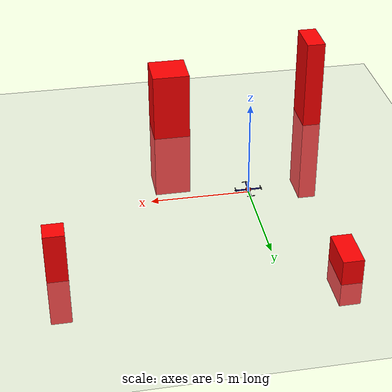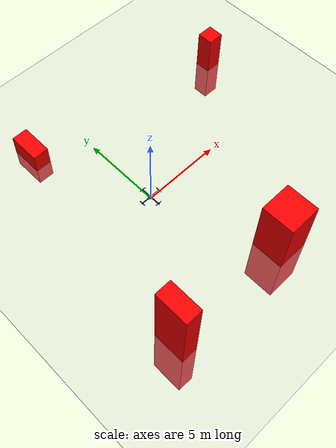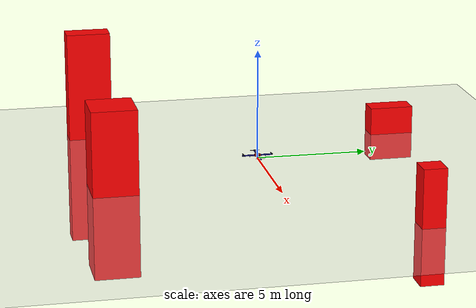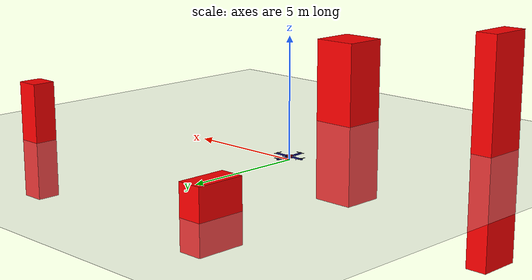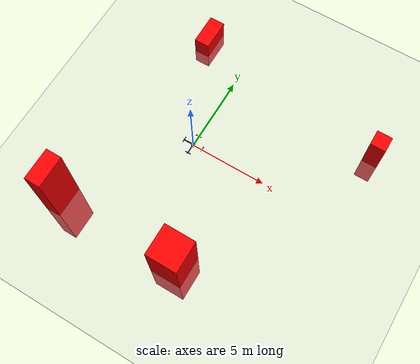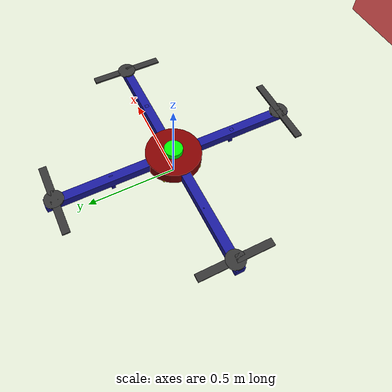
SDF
<?xml version="1.0" ?>
<sdf version="1.4">
  <world name="quadcopter_world">
    <!-- A ground plane -->
    <include>
      <uri>model://ground_plane</uri>
    </include>

    <!-- A light source -->
    <include>
      <uri>model://sun</uri>
    </include>

    <!-- Quadcopter model -->
    <model name="quadcopter">
      <pose>0 0 0 0 0 0</pose>

      <!-- Center Cylinder -->
      <link name="center_cylinder">
        <pose>0 0 0.15 0 0 0</pose>
        <collision name="collision">
          <geometry>
            <cylinder>
              <radius>0.15</radius>
              <length>0.07</length>
            </cylinder>
          </geometry>
        </collision>
        <visual name="visual">
          <geometry>
            <cylinder>
              <radius>0.15</radius>
              <length>0.07</length>
            </cylinder>
          </geometry>
          <material>
            <ambient>0.5 0 0 1</ambient>
            <diffuse>0.5 0 0 1</diffuse>
            <specular>0.5 0 0 1</specular>
            <emissive>0.5 0 0 1</emissive>
          </material>
        </visual>
      </link>

      <!-- Arm 1 -->
      <link name="arm_1">
        <pose>0.35 0 0.15 0 0 0</pose>
        <collision name="collision">
          <geometry>
            <box>
              <size>0.7 0.05 0.05</size>
            </box>
          </geometry>
        </collision>
        <visual name="visual">
          <geometry>
            <box>
              <size>0.7 0.05 0.05</size>
            </box>
          </geometry>
          <material>
            <ambient>0.1 0.1 0.6 1</ambient>
            <diffuse>0.1 0.1 0.6 1</diffuse>
            <specular>0.1 0.1 0.6 1</specular>
            <emissive>0.1 0.1 0.6 1</emissive>
          </material>
        </visual>
        <collision name="base1_collision">
          <geometry>
            <box>
              <size>0.02 0.02 0.1</size>
            </box>
          </geometry>
        </collision>
        <visual name="base_visual">
          <geometry>
            <box>
              <size>0.02 0.02 0.1</size>
            </box>
          </geometry>
          <material>
            <ambient>0.1 0.1 0.6 1</ambient>
            <diffuse>0.1 0.1 0.6 1</diffuse>
            <specular>0.1 0.1 0.6 1</specular>
            <emissive>0.1 0.1 0.6 1</emissive>
          </material>
          <pose>0 0 -0.025 0 0 0</pose>
        </visual>
      </link>

      <!-- Arm 2 -->
      <link name="arm_2">
        <pose>0 0.35 0.15 0 0 1.5708</pose>
        <collision name="collision">
          <geometry>
            <box>
              <size>0.7 0.05 0.05</size>
            </box>
          </geometry>
        </collision>
        <visual name="visual">
          <geometry>
            <box>
              <size>0.7 0.05 0.05</size>
            </box>
          </geometry>
          <material>
            <ambient>0.1 0.1 0.6 1</ambient>
            <diffuse>0.1 0.1 0.6 1</diffuse>
            <specular>0.1 0.1 0.6 1</specular>
            <emissive>0.1 0.1 0.6 1</emissive>
          </material>
        </visual>
        <collision name="base2_collision">
          <geometry>
            <box>
              <size>0.02 0.02 0.1</size>
            </box>
          </geometry>
        </collision>
        <visual name="base_visual">
          <geometry>
            <box>
              <size>0.02 0.02 0.1</size>
            </box>
          </geometry>
          <material>
            <ambient>0.1 0.1 0.6 1</ambient>
            <diffuse>0.1 0.1 0.6 1</diffuse>
            <specular>0.1 0.1 0.6 1</specular>
            <emissive>0.1 0.1 0.6 1</emissive>
          </material>
          <pose>0 0 -0.025 0 0 0</pose>
        </visual>
      </link>

      <!-- Arm 3 -->
      <link name="arm_3">
        <pose>-0.35 0 0.15 0 0 0</pose>
        <collision name="collision">
          <geometry>
            <box>
              <size>0.7 0.05 0.05</size>
            </box>
          </geometry>
        </collision>
        <visual name="visual">
          <geometry>
            <box>
              <size>0.7 0.05 0.05</size>
            </box>
          </geometry>
          <material>
            <ambient>0.1 0.1 0.6 1</ambient>
            <diffuse>0.1 0.1 0.6 1</diffuse>
            <specular>0.1 0.1 0.6 1</specular>
            <emissive>0.1 0.1 0.6 1</emissive>
          </material>
        </visual>
        <collision name="base3_collision">
          <geometry>
            <box>
              <size>0.02 0.02 0.1</size>
            </box>
          </geometry>
        </collision>
        <visual name="base_visual">
          <geometry>
            <box>
              <size>0.02 0.02 0.1</size>
            </box>
          </geometry>
          <material>
            <ambient>0.1 0.1 0.6 1</ambient>
            <diffuse>0.1 0.1 0.6 1</diffuse>
            <specular>0.1 0.1 0.6 1</specular>
            <emissive>0.1 0.1 0.6 1</emissive>
          </material>
          <pose>0 0 -0.025 0 0 0</pose>
        </visual>
      </link>

      <!-- Arm 4 -->
      <link name="arm_4">
        <pose>0 -0.35 0.15 0 0 1.5708</pose>
        <collision name="collision">
          <geometry>
            <box>
              <size>0.7 0.05 0.05</size>
            </box>
          </geometry>
        </collision>
        <visual name="visual">
          <geometry>
            <box>
              <size>0.7 0.05 0.05</size>
            </box>
          </geometry>
          <material>
            <ambient>0.1 0.1 0.6 1</ambient>
            <diffuse>0.1 0.1 0.6 1</diffuse>
            <specular>0.1 0.1 0.6 1</specular>
            <emissive>0.1 0.1 0.6 1</emissive>
          </material>
        </visual>
        <collision name="base4_collision">
          <geometry>
            <box>
              <size>0.02 0.02 0.1</size>
            </box>
          </geometry>
        </collision>
        <visual name="base_visual">
          <geometry>
            <box>
              <size>0.02 0.02 0.1</size>
            </box>
          </geometry>
          <material>
            <ambient>0.1 0.1 0.6 1</ambient>
            <diffuse>0.1 0.1 0.6 1</diffuse>
            <specular>0.1 0.1 0.6 1</specular>
            <emissive>0.1 0.1 0.6 1</emissive>
          </material>
          <pose>0 0 -0.025 0 0 0</pose>
        </visual>
      </link>

      <!-- Rotor 1 -->
      <link name="rotor_1">
        <pose>0.65 0 0.18 0 0 0</pose>
        <collision name="collision">
          <geometry>
            <cylinder>
              <radius>0.05</radius>
              <length>0.01</length>
            </cylinder>
          </geometry>
        </collision>
        <visual name="visual">
          <geometry>
            <cylinder>
              <radius>0.05</radius>
              <length>0.01</length>
            </cylinder>
          </geometry>
          <material>
            <ambient>0.2 0.2 0.2 1</ambient>
            <diffuse>0.2 0.2 0.2 1</diffuse>
            <specular>0.2 0.2 0.2 1</specular>
            <emissive>0.2 0.2 0.2 1</emissive>
          </material>
        </visual>

        <!-- Propeller blades -->
        <collision name="blade_1_collision">
          <geometry>
            <box>
              <size>0.2 0.04 0.01</size>
            </box>
          </geometry>
          <pose>0 0.1 0 0 0 1.5708</pose>
        </collision>
        <visual name="blade_1_visual">
          <geometry>
            <box>
              <size>0.2 0.04 0.01</size>
            </box>
          </geometry>
          <material>
            <ambient>0.2 0.2 0.2 1</ambient>
            <diffuse>0.2 0.2 0.2 1</diffuse>
            <specular>0.2 0.2 0.2 1</specular>
            <emissive>0.2 0.2 0.2 1</emissive>
          </material>
          <pose>0 0.1 0 0 0 1.5708</pose>
        </visual>

        <collision name="blade_2_collision">
          <geometry>
            <box>
              <size>0.2 0.04 0.01</size>
            </box>
          </geometry>
          <pose>0 -0.1 0 0 0 1.5708</pose>
        </collision>
        <visual name="blade_2_visual">
          <geometry>
            <box>
              <size>0.2 0.04 0.01</size>
            </box>
          </geometry>
          <material>
            <ambient>0.2 0.2 0.2 1</ambient>
            <diffuse>0.2 0.2 0.2 1</diffuse>
            <specular>0.2 0.2 0.2 1</specular>
            <emissive>0.2 0.2 0.2 1</emissive>
          </material>
          <pose>0 -0.1 0 0 0 1.5708</pose>
        </visual>
      </link>

      <!-- Rotor 2 -->
      <link name="rotor_2">
        <pose>0 0.65 0.18 0 0 0</pose>
        <collision name="collision">
          <geometry>
            <cylinder>
              <radius>0.05</radius>
              <length>0.01</length>
            </cylinder>
          </geometry>
        </collision>
        <visual name="visual">
          <geometry>
            <cylinder>
              <radius>0.05</radius>
              <length>0.01</length>
            </cylinder>
          </geometry>
          <material>
            <ambient>0.2 0.2 0.2 1</ambient>
            <diffuse>0.2 0.2 0.2 1</diffuse>
            <specular>0.1 0.1 0.1 1</specular>
            <emissive>0 0 0 1</emissive>
          </material>
        </visual>

        <!-- Propeller blades -->
        <collision name="blade_1_collision">
          <geometry>
            <box>
              <size>0.2 0.04 0.01</size>
            </box>
          </geometry>
          <pose>0.1 0 0 0 0 0</pose>
        </collision>
        <visual name="blade_1_visual">
          <geometry>
            <box>
              <size>0.2 0.04 0.01</size>
            </box>
          </geometry>
          <material>
            <ambient>0.2 0.2 0.2 1</ambient>
            <diffuse>0.2 0.2 0.2 1</diffuse>
            <specular>0.1 0.1 0.1 1</specular>
            <emissive>0 0 0 1</emissive>
          </material>
          <pose>0.1 0 0 0 0 0</pose>
        </visual>

        <collision name="blade_2_collision">
          <geometry>
            <box>
              <size>0.2 0.04 0.01</size>
            </box>
          </geometry>
          <pose>-0.1 0 0 0 0 0</pose>
        </collision>
        <visual name="blade_2_visual">
          <geometry>
            <box>
              <size>0.2 0.04 0.01</size>
            </box>
          </geometry>
          <material>
            <ambient>0.2 0.2 0.2 1</ambient>
            <diffuse>0.2 0.2 0.2 1</diffuse>
            <specular>0.1 0.1 0.1 1</specular>
            <emissive>0 0 0 1</emissive>
          </material>
          <pose>-0.1 0 0 0 0 0</pose>
        </visual>
      </link>

      <!-- Rotor 3 -->
      <link name="rotor_3">
        <pose>-0.65 0 0.18 0 0 0</pose>
        <collision name="collision">
          <geometry>
            <cylinder>
              <radius>0.05</radius>
              <length>0.01</length>
            </cylinder>
          </geometry>
        </collision>
        <visual name="visual">
          <geometry>
            <cylinder>
              <radius>0.05</radius>
              <length>0.01</length>
            </cylinder>
          </geometry>
          <material>
            <ambient>0.2 0.2 0.2 1</ambient>
            <diffuse>0.2 0.2 0.2 1</diffuse>
            <specular>0.2 0.2 0.2 1</specular>
            <emissive>0.2 0.2 0.2 1</emissive>
          </material>
        </visual>

        <!-- Propeller blades -->
        <collision name="blade_1_collision">
          <geometry>
            <box>
              <size>0.2 0.04 0.01</size>
            </box>
          </geometry>
          <pose>0 0.1 0 0 0 1.5708</pose>
        </collision>
        <visual name="blade_1_visual">
          <geometry>
            <box>
              <size>0.2 0.04 0.01</size>
            </box>
          </geometry>
          <material>
            <ambient>0.2 0.2 0.2 1</ambient>
            <diffuse>0.2 0.2 0.2 1</diffuse>
            <specular>0.2 0.2 0.2 1</specular>
            <emissive>0.2 0.2 0.2 1</emissive>
          </material>
          <pose>0 0.1 0 0 0 1.5708</pose>
        </visual>

        <collision name="blade_2_collision">
          <geometry>
            <box>
              <size>0.2 0.04 0.01</size>
            </box>
          </geometry>
          <pose>0 -0.1 0 0 0 1.5708</pose>
        </collision>
        <visual name="blade_2_visual">
          <geometry>
            <box>
              <size>0.2 0.04 0.01</size>
            </box>
          </geometry>
          <material>
            <ambient>0.2 0.2 0.2 1</ambient>
            <diffuse>0.2 0.2 0.2 1</diffuse>
            <specular>0.2 0.2 0.2 1</specular>
            <emissive>0.2 0.2 0.2 1</emissive>
          </material>
          <pose>0 -0.1 0 0 0 1.5708</pose>
        </visual>
      </link>

      <!-- Rotor 4 -->
      <link name="rotor_4">
        <pose>0 -0.65 0.18 0 0 0</pose>
        <collision name="collision">
          <geometry>
            <cylinder>
              <radius>0.05</radius>
              <length>0.01</length>
            </cylinder>
          </geometry>
        </collision>
        <visual name="visual">
          <geometry>
            <cylinder>
              <radius>0.05</radius>
              <length>0.01</length>
            </cylinder>
          </geometry>
          <material>
            <ambient>0.2 0.2 0.2 1</ambient>
            <diffuse>0.2 0.2 0.2 1</diffuse>
            <specular>0.1 0.1 0.1 1</specular>
            <emissive>0 0 0 1</emissive>
          </material>
        </visual>

        <!-- Propeller blades -->
        <collision name="blade_1_collision">
          <geometry>
            <box>
              <size>0.2 0.04 0.01</size>
            </box>
          </geometry>
          <pose>0.1 0 0 0 0 0</pose>
        </collision>
        <visual name="blade_1_visual">
          <geometry>
            <box>
              <size>0.2 0.04 0.01</size>
            </box>
          </geometry>
          <material>
            <ambient>0.2 0.2 0.2 1</ambient>
            <diffuse>0.2 0.2 0.2 1</diffuse>
            <specular>0.1 0.1 0.1 1</specular>
            <emissive>0 0 0 1</emissive>
          </material>
          <pose>0.1 0 0 0 0 0</pose>
        </visual>

        <collision name="blade_2_collision">
          <geometry>
            <box>
              <size>0.2 0.04 0.01</size>
            </box>
          </geometry>
          <pose>-0.1 0 0 0 0 0</pose>
        </collision>
        <visual name="blade_2_visual">
          <geometry>
            <box>
              <size>0.2 0.04 0.01</size>
            </box>
          </geometry>
          <material>
            <ambient>0.2 0.2 0.2 1</ambient>
            <diffuse>0.2 0.2 0.2 1</diffuse>
            <specular>0.1 0.1 0.1 1</specular>
            <emissive>0 0 0 1</emissive>
          </material>
          <pose>-0.1 0 0 0 0 0</pose>
        </visual>
      </link>

      <!-- Lidar -->
      <link name="lidar">
        <visual name="visual">
          <pose>0 0 0.2 0 0 0</pose>
          <geometry>
            <cylinder>
              <radius>0.05</radius>
              <length>0.03</length>
            </cylinder>
          </geometry>
          <material>
            <ambient>0.0 1.0 0.0 1</ambient>
            <diffuse>0.0 1.0 0.0 1</diffuse>
          </material>
        </visual>
        <collision name="collision">
          <geometry>
            <cylinder>
              <radius>0.05</radius>
              <length>0.03</length>
            </cylinder>
          </geometry>
        </collision>
        <sensor name="lidar_sensor" type="ray">
          <pose>0 0 0.21 0 0 0</pose>
          <always_on>1</always_on>
          <update_rate>10</update_rate>
          <visualize>true</visualize>
          <ray>
            <scan>
              <horizontal>
                <samples>640</samples>
                <resolution>1</resolution>
                <min_angle>-3.14159</min_angle>
                <max_angle>3.14159</max_angle>
              </horizontal>
              <vertical>
                <samples>1</samples>
                <resolution>1</resolution>
                <min_angle>0</min_angle>
                <max_angle>0</max_angle>
              </vertical>
            </scan>
            <range>
              <min>0.1</min>
              <max>15.0</max>
              <resolution>0.01</resolution>
            </range>
          </ray>
        </sensor>
      </link>

      <!-- Ultrasonic sensors-->
      <link name="ultrasonic_1">
        <visual name="visual">
          <pose>0.1 0.1 0.115 0 0 0</pose>
          <geometry>
            <cylinder>
              <radius>0.01</radius>
              <length>0.005</length>
            </cylinder>
          </geometry>
          <material>
            <ambient>1.0 1.0 0.0 1</ambient>
            <diffuse>1.0 1.0 0.0 1</diffuse>
          </material>
        </visual>
        <collision name="collision">
          <geometry>
            <cylinder>
              <radius>0.01</radius>
              <length>0.005</length>
            </cylinder>
          </geometry>
        </collision>
        <sensor name="ultrasonic_sensor" type="ray">
          <pose>0.1 0.1 0.115 0 0 0</pose>
          <always_on>1</always_on>
          <update_rate>10</update_rate>
          <visualize>true</visualize>
          <ray>
            <scan>
              <horizontal>
                <samples>640</samples>
                <resolution>1</resolution>
                <min_angle>0.39</min_angle>
                <max_angle>1.18</max_angle>
              </horizontal>
              <vertical>
                <samples>1</samples>
                <resolution>1</resolution>
                <min_angle>0</min_angle>
                <max_angle>0</max_angle>
              </vertical>
            </scan>
            <range>
              <min>0.1</min>
              <max>4.0</max>
              <resolution>0.01</resolution>
            </range>
          </ray>
        </sensor>
      </link>

      <link name="ultrasonic_2">
        <visual name="visual">
          <pose>-0.1 0.1 0.115 0 0 0</pose>
          <geometry>
            <cylinder>
              <radius>0.01</radius>
              <length>0.005</length>
            </cylinder>
          </geometry>
          <material>
            <ambient>1.0 1.0 0.0 1</ambient>
            <diffuse>1.0 1.0 0.0 1</diffuse>
          </material>
        </visual>
        <collision name="collision">
          <geometry>
            <cylinder>
              <radius>0.01</radius>
              <length>0.005</length>
            </cylinder>
          </geometry>
        </collision>
        <sensor name="ultrasonic_sensor" type="ray">
          <pose>-0.1 0.1 0.115 0 0 0</pose>
          <always_on>1</always_on>
          <update_rate>10</update_rate>
          <visualize>true</visualize>
          <ray>
            <scan>
              <horizontal>
                <samples>640</samples>
                <resolution>1</resolution>
                <min_angle>1.96</min_angle>
                <max_angle>2.75</max_angle>
              </horizontal>
              <vertical>
                <samples>1</samples>
                <resolution>1</resolution>
                <min_angle>0</min_angle>
                <max_angle>0</max_angle>
              </vertical>
            </scan>
            <range>
              <min>0.1</min>
              <max>4.0</max>
              <resolution>0.01</resolution>
            </range>
          </ray>
        </sensor>
      </link>

      <link name="ultrasonic_3">
        <visual name="visual">
          <pose>-0.1 -0.1 0.115 0 0 0</pose>
          <geometry>
            <cylinder>
              <radius>0.01</radius>
              <length>0.005</length>
            </cylinder>
          </geometry>
          <material>
            <ambient>1.0 1.0 0.0 1</ambient>
            <diffuse>1.0 1.0 0.0 1</diffuse>
          </material>
        </visual>
        <collision name="collision">
          <geometry>
            <cylinder>
              <radius>0.01</radius>
              <length>0.005</length>
            </cylinder>
          </geometry>
        </collision>
        <sensor name="ultrasonic_sensor" type="ray">
          <pose>-0.1 -0.1 0.115 0 0 0</pose>
          <always_on>1</always_on>
          <update_rate>10</update_rate>
          <visualize>true</visualize>
          <ray>
            <scan>
              <horizontal>
                <samples>640</samples>
                <resolution>1</resolution>
                <min_angle>-1.96</min_angle>
                <max_angle>-2.75</max_angle>
              </horizontal>
              <vertical>
                <samples>1</samples>
                <resolution>1</resolution>
                <min_angle>0</min_angle>
                <max_angle>0</max_angle>
              </vertical>
            </scan>
            <range>
              <min>0.1</min>
              <max>4.0</max>
              <resolution>0.01</resolution>
            </range>
          </ray>
        </sensor>
      </link>

      <link name="ultrasonic_4">
        <visual name="visual">
          <pose>0.1 -0.1 0.115 0 0 0</pose>
          <geometry>
            <cylinder>
              <radius>0.01</radius>
              <length>0.005</length>
            </cylinder>
          </geometry>
          <material>
            <ambient>1.0 1.0 0.0 1</ambient>
            <diffuse>1.0 1.0 0.0 1</diffuse>
          </material>
        </visual>
        <collision name="collision">
          <geometry>
            <cylinder>
              <radius>0.01</radius>
              <length>0.005</length>
            </cylinder>
          </geometry>
        </collision>
        <sensor name="ultrasonic_sensor" type="ray">
          <pose>0.1 -0.1 0.115 0 0 0</pose>
          <always_on>1</always_on>
          <update_rate>10</update_rate>
          <visualize>true</visualize>
          <ray>
            <scan>
              <horizontal>
                <samples>640</samples>
                <resolution>1</resolution>
                <min_angle>-0.39</min_angle>
                <max_angle>-1.18</max_angle>
              </horizontal>
              <vertical>
                <samples>1</samples>
                <resolution>1</resolution>
                <min_angle>0</min_angle>
                <max_angle>0</max_angle>
              </vertical>
            </scan>
            <range>
              <min>0.1</min>
              <max>4.0</max>
              <resolution>0.01</resolution>
            </range>
          </ray>
        </sensor>
      </link>

      <!-- Fixed Joints for Arms -->
      <joint name="arm_1_joint" type="fixed">
        <parent>center_cylinder</parent>
        <child>arm_1</child>
      </joint>

      <joint name="arm_2_joint" type="fixed">
        <parent>center_cylinder</parent>
        <child>arm_2</child>
      </joint>

      <joint name="arm_3_joint" type="fixed">
        <parent>center_cylinder</parent>
        <child>arm_3</child>
      </joint>

      <joint name="arm_4_joint" type="fixed">
        <parent>center_cylinder</parent>
        <child>arm_4</child>
      </joint>

      <!-- Joints -->
      <joint name="rotor_1_joint" type="revolute">
        <parent>arm_1</parent>
        <child>rotor_1</child>
        <axis>
          <xyz>0 0 1</xyz>
        </axis>
      </joint>

      <joint name="rotor_2_joint" type="revolute">
        <parent>arm_2</parent>
        <child>rotor_2</child>
        <axis>
          <xyz>0 0 1</xyz>
        </axis>
      </joint>

      <joint name="rotor_3_joint" type="revolute">
        <parent>arm_3</parent>
        <child>rotor_3</child>
        <axis>
          <xyz>0 0 1</xyz>
        </axis>
      </joint>

      <joint name="rotor_4_joint" type="revolute">
        <parent>arm_4</parent>
        <child>rotor_4</child>
        <axis>
          <xyz>0 0 1</xyz>
        </axis>
      </joint>

      <!-- Fixed Joints for Sensors -->
      <joint name="lidar_joint" type="fixed">
        <parent>center_cylinder</parent>
        <child>lidar</child>
      </joint>

      <joint name="ultrasonic1_joint" type="fixed">
        <parent>center_cylinder</parent>
        <child>ultrasonic_1</child>
      </joint>

      <joint name="ultrasonic2_joint" type="fixed">
        <parent>center_cylinder</parent>
        <child>ultrasonic_2</child>
      </joint>

      <joint name="ultrasonic3_joint" type="fixed">
        <parent>center_cylinder</parent>
        <child>ultrasonic_3</child>
      </joint>

      <joint name="ultrasonic4_joint" type="fixed">
        <parent>center_cylinder</parent>
        <child>ultrasonic_4</child>
      </joint>
    </model>

    <!--Environment-->
    <model name="Obstacles">
      <link name="Obstacle1">
        <pose> 10 5 0 0 0 0</pose>
        <visual name="Obstacle1">
          <geometry>
            <box>
              <size>1 1 5</size>
            </box>
          </geometry>
          <material>
            <ambient>1 0 0 1</ambient>
            <diffuse>1 0 0 1</diffuse>
          </material>
        </visual>
        <collision name="collision">
          <geometry>
            <box>
              <size>1 1 5</size>
            </box>
          </geometry>
        </collision>
      </link>

      <link name="Obstacle2">
      <pose> -5 -7 0 0 0 0</pose>
        <visual name="visual">
          <geometry>
            <box>
              <size>1 2 10</size>
            </box>
          </geometry>
          <material>
            <ambient>1 0 0 1</ambient>
            <diffuse>1 0 0 1</diffuse>
          </material>
        </visual>
        <collision name="collision">
          <geometry>
            <box>
              <size>1 2 10</size>
            </box>
          </geometry>
        </collision>
      </link>

      <link name="Obstacle3">
      <pose> 3 -7 0 0 0 0</pose>
        <visual name="visual">
          <geometry>
            <box>
              <size>2 2 7.5</size>
            </box>
          </geometry>
          <material>
            <ambient>1 0 0 1</ambient>
            <diffuse>1 0 0 1</diffuse>
          </material>
        </visual>
        <collision name="collision">
          <geometry>
            <box>
              <size>2 2 7.5</size>
            </box>
          </geometry>
        </collision>
      </link>

      <link name="Obstacle4">
      <pose> -3 7 0 0 0 0</pose>
        <visual name="visual">
          <geometry>
            <box>
              <size>1 2 2.5</size>
            </box>
          </geometry>
          <material>
            <ambient>1 0 0 1</ambient>
            <diffuse>1 0 0 1</diffuse>
          </material>
        </visual>
        <collision name="collision">
          <geometry>
            <box>
              <size>1 2 2.5</size>
            </box>
          </geometry>
        </collision>
      </link>
    </model>

    <!-- Physics -->
    <physics type="ode">
      <max_step_size>0.001</max_step_size>
      <real_time_factor>1</real_time_factor>
      <real_time_update_rate>100</real_time_update_rate>
    </physics>

    <!-- Gravity -->
    <gravity>0 0 -9.81</gravity>

    <plugin name="GazeboPlugin" filename="lib/libGazeboCoSimPlugin.so"><portNumber>14581</portNumber></plugin>
  </world>
</sdf>
